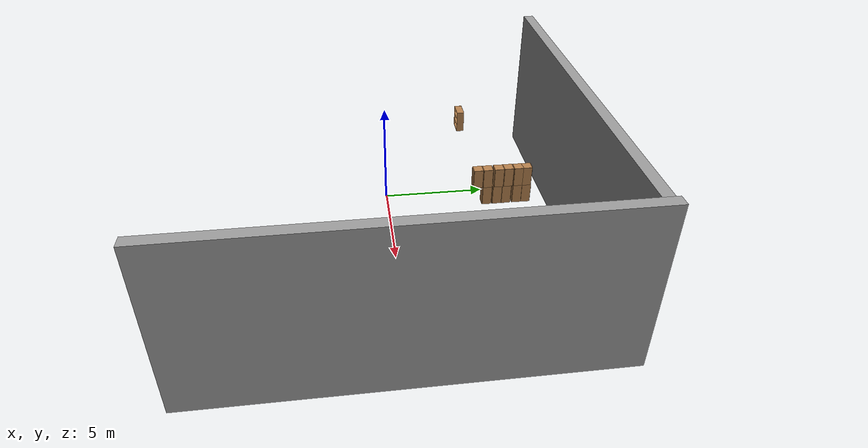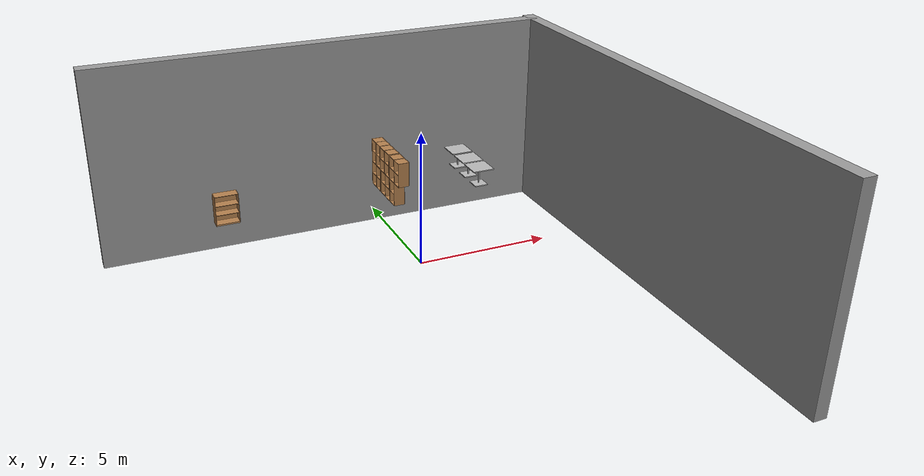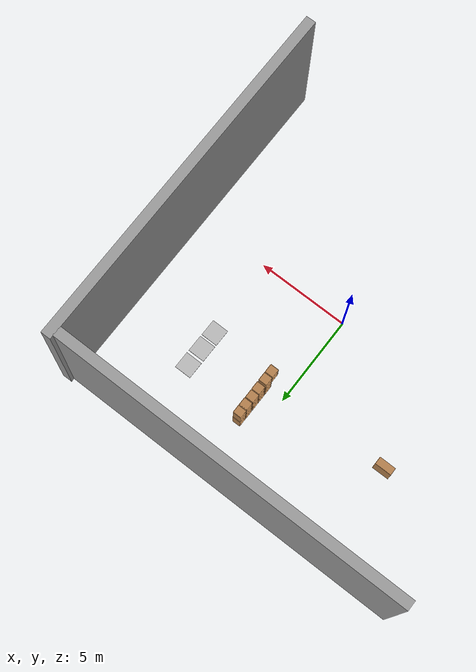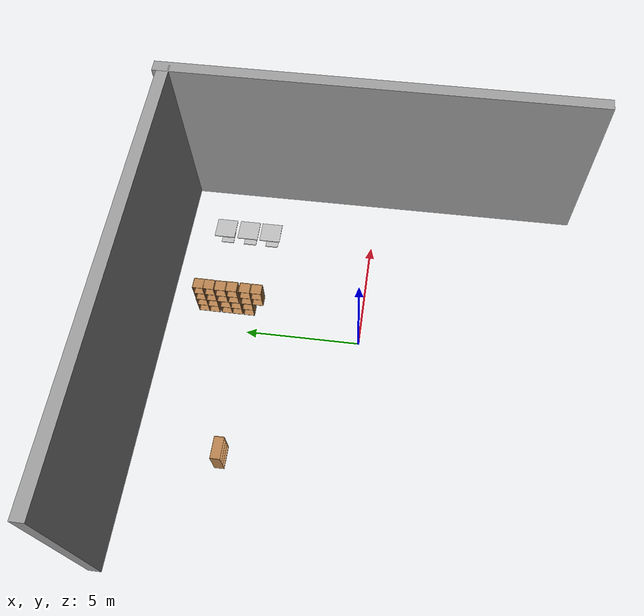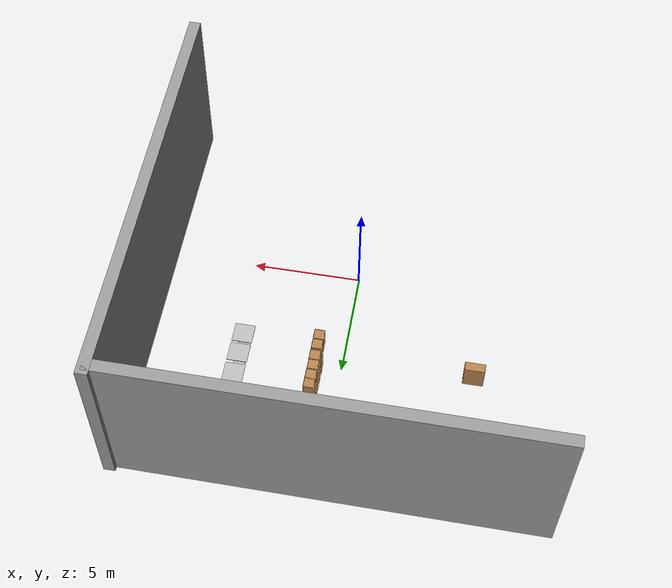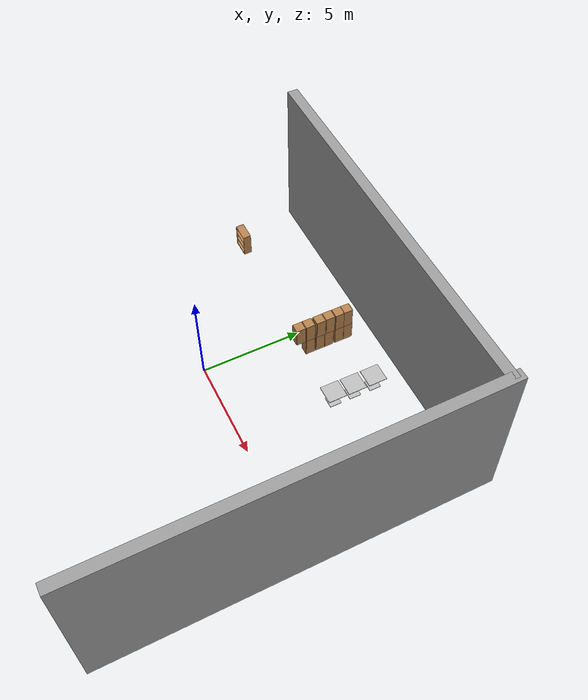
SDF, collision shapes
<sdf version="1.6">
 <model name="indoor_environment_4">
  <model name="bookshelf_clone_12_clone_2">
   <static>1</static>
   <link name="link">
    <inertial><mass>1</mass></inertial>
    <collision name="back">
     <pose>0 0.005 0.6 0 -0 0</pose>
     <geometry><box><size>0.9 0.01 1.2</size></box></geometry>
    </collision>
    <visual name="visual1">
     <pose>0 0.005 0.6 0 -0 0</pose>
     <geometry><box><size>0.9 0.01 1.2</size></box></geometry>
     <material>
      <script><uri>file://media/materials/scripts/gazebo.material</uri><name>Gazebo/Wood</name></script>
     </material>
    </visual>
    <collision name="left_side">
     <pose>0.45 -0.195 0.6 0 -0 0</pose>
     <geometry><box><size>0.02 0.4 1.2</size></box></geometry>
    </collision>
    <visual name="visual2">
     <pose>0.45 -0.195 0.6 0 -0 0</pose>
     <geometry><box><size>0.02 0.4 1.2</size></box></geometry>
     <material>
      <script><uri>file://media/materials/scripts/gazebo.material</uri><name>Gazebo/Wood</name></script>
     </material>
    </visual>
    <collision name="right_side">
     <pose>-0.45 -0.195 0.6 0 -0 0</pose>
     <geometry><box><size>0.02 0.4 1.2</size></box></geometry>
    </collision>
    <visual name="visual3">
     <pose>-0.45 -0.195 0.6 0 -0 0</pose>
     <geometry><box><size>0.02 0.4 1.2</size></box></geometry>
     <material>
      <script><uri>file://media/materials/scripts/gazebo.material</uri><name>Gazebo/Wood</name></script>
     </material>
    </visual>
    <collision name="bottom">
     <pose>0 -0.195 0.03 0 -0 0</pose>
     <geometry><box><size>0.88 0.4 0.06</size></box></geometry>
    </collision>
    <visual name="visual4">
     <pose>0 -0.195 0.03 0 -0 0</pose>
     <geometry><box><size>0.88 0.4 0.06</size></box></geometry>
     <material>
      <script><uri>file://media/materials/scripts/gazebo.material</uri><name>Gazebo/Wood</name></script>
     </material>
    </visual>
    <collision name="top">
     <pose>0 -0.195 1.19 0 -0 0</pose>
     <geometry><box><size>0.88 0.4 0.02</size></box></geometry>
    </collision>
    <visual name="visual5">
     <pose>0 -0.195 1.19 0 -0 0</pose>
     <geometry><box><size>0.88 0.4 0.02</size></box></geometry>
     <material>
      <script><uri>file://media/materials/scripts/gazebo.material</uri><name>Gazebo/Wood</name></script>
     </material>
    </visual>
    <collision name="low_shelf">
     <pose>0 -0.195 0.43 0 -0 0</pose>
     <geometry><box><size>0.88 0.4 0.02</size></box></geometry>
    </collision>
    <visual name="visual6">
     <pose>0 -0.195 0.43 0 -0 0</pose>
     <geometry><box><size>0.88 0.4 0.02</size></box></geometry>
     <material>
      <script><uri>file://media/materials/scripts/gazebo.material</uri><name>Gazebo/Wood</name></script>
     </material>
    </visual>
    <collision name="high_shelf">
     <pose>0 -0.195 0.8 0 -0 0</pose>
     <geometry><box><size>0.88 0.4 0.02</size></box></geometry>
    </collision>
    <visual name="visual7">
     <pose>0 -0.195 0.8 0 -0 0</pose>
     <geometry><box><size>0.88 0.4 0.02</size></box></geometry>
     <material>
      <script><uri>file://media/materials/scripts/gazebo.material</uri><name>Gazebo/Wood</name></script>
     </material>
    </visual>
   </link>
   <pose>-5.9097 5.04344 0.552309 0 -0 0</pose>
  </model>
  <model name="cabinet">
   <static>1</static>
   <link name="cabinet_bottom_plate">
    <inertial>
     <pose>0 0 -1 0 -0 0</pose>
     <inertia><ixx>2.05</ixx><ixy>0</ixy><ixz>0</ixz><iyy>2.05</iyy><iyz>0</iyz><izz>2.05</izz></inertia>
     <mass>25</mass>
    </inertial>
    <collision name="cabinet_bottom_plate_geom">
     <pose>0 0 0.01 0 -0 0</pose>
     <geometry><box><size>0.45 0.45 0.02</size></box></geometry>
    </collision>
    <visual name="cabinet_bottom_plate_geom_visual">
     <pose>0 0 0.01 0 -0 0</pose>
     <geometry><box><size>0.45 0.45 0.02</size></box></geometry>
     <material>
      <script><uri>file://media/materials/scripts/gazebo.material</uri><name>Gazebo/Wood</name></script>
     </material>
    </visual>
    <collision name="cabinet_bottom_plate_geom_cabinet_back_plate">
     <pose>0.235 0 0.51 0 -0 0</pose>
     <geometry><box><size>0.02 0.45 1.02</size></box></geometry>
    </collision>
    <visual name="cabinet_bottom_plate_geom_cabinet_back_plate_visual">
     <pose>0.235 0 0.51 0 -0 0</pose>
     <geometry><box><size>0.02 0.45 1.02</size></box></geometry>
     <material>
      <script><uri>file://media/materials/scripts/gazebo.material</uri><name>Gazebo/Wood</name></script>
     </material>
    </visual>
    <collision name="cabinet_bottom_plate_geom_cabinet_left_plate">
     <pose>0 0.235 0.51 0 -0 0</pose>
     <geometry><box><size>0.45 0.02 1.02</size></box></geometry>
    </collision>
    <visual name="cabinet_bottom_plate_geom_cabinet_left_plate_visual">
     <pose>0 0.235 0.51 0 -0 0</pose>
     <geometry><box><size>0.45 0.02 1.02</size></box></geometry>
     <material>
      <script><uri>file://media/materials/scripts/gazebo.material</uri><name>Gazebo/Wood</name></script>
     </material>
    </visual>
    <collision name="cabinet_bottom_plate_geom_cabinet_middle_plate">
     <pose>0 0 0.51 0 -0 0</pose>
     <geometry><box><size>0.45 0.45 0.02</size></box></geometry>
    </collision>
    <visual name="cabinet_bottom_plate_geom_cabinet_middle_plate_visual">
     <pose>0 0 0.51 0 -0 0</pose>
     <geometry><box><size>0.45 0.45 0.02</size></box></geometry>
     <material>
      <script><uri>file://media/materials/scripts/gazebo.material</uri><name>Gazebo/Wood</name></script>
     </material>
    </visual>
    <collision name="cabinet_bottom_plate_geom_cabinet_right_plate">
     <pose>0 -0.235 0.51 0 -0 0</pose>
     <geometry><box><size>0.45 0.02 1.02</size></box></geometry>
    </collision>
    <visual name="cabinet_bottom_plate_geom_cabinet_right_plate_visual">
     <pose>0 -0.235 0.51 0 -0 0</pose>
     <geometry><box><size>0.45 0.02 1.02</size></box></geometry>
     <material>
      <script><uri>file://media/materials/scripts/gazebo.material</uri><name>Gazebo/Wood</name></script>
     </material>
    </visual>
    <collision name="cabinet_bottom_plate_geom_cabinet_top_plate">
     <pose>0 0 1.01 0 -0 0</pose>
     <geometry><box><size>0.45 0.45 0.02</size></box></geometry>
    </collision>
    <visual name="cabinet_bottom_plate_geom_cabinet_top_plate_visual">
     <pose>0 0 1.01 0 -0 0</pose>
     <geometry><box><size>0.45 0.45 0.02</size></box></geometry>
     <material>
      <script><uri>file://media/materials/scripts/gazebo.material</uri><name>Gazebo/Wood</name></script>
     </material>
    </visual>
   </link>
   <pose>1.0903 7.04344 1.01792 0 -0 0</pose>
  </model>
  <model name="cabinet_0">
   <static>1</static>
   <link name="cabinet_bottom_plate">
    <inertial>
     <pose>0 0 -1 0 -0 0</pose>
     <inertia><ixx>2.05</ixx><ixy>0</ixy><ixz>0</ixz><iyy>2.05</iyy><iyz>0</iyz><izz>2.05</izz></inertia>
     <mass>25</mass>
    </inertial>
    <collision name="cabinet_bottom_plate_geom">
     <pose>0 0 0.01 0 -0 0</pose>
     <geometry><box><size>0.45 0.45 0.02</size></box></geometry>
    </collision>
    <visual name="cabinet_bottom_plate_geom_visual">
     <pose>0 0 0.01 0 -0 0</pose>
     <geometry><box><size>0.45 0.45 0.02</size></box></geometry>
     <material>
      <script><uri>file://media/materials/scripts/gazebo.material</uri><name>Gazebo/Wood</name></script>
     </material>
    </visual>
    <collision name="cabinet_bottom_plate_geom_cabinet_back_plate">
     <pose>0.235 0 0.51 0 -0 0</pose>
     <geometry><box><size>0.02 0.45 1.02</size></box></geometry>
    </collision>
    <visual name="cabinet_bottom_plate_geom_cabinet_back_plate_visual">
     <pose>0.235 0 0.51 0 -0 0</pose>
     <geometry><box><size>0.02 0.45 1.02</size></box></geometry>
     <material>
      <script><uri>file://media/materials/scripts/gazebo.material</uri><name>Gazebo/Wood</name></script>
     </material>
    </visual>
    <collision name="cabinet_bottom_plate_geom_cabinet_left_plate">
     <pose>0 0.235 0.51 0 -0 0</pose>
     <geometry><box><size>0.45 0.02 1.02</size></box></geometry>
    </collision>
    <visual name="cabinet_bottom_plate_geom_cabinet_left_plate_visual">
     <pose>0 0.235 0.51 0 -0 0</pose>
     <geometry><box><size>0.45 0.02 1.02</size></box></geometry>
     <material>
      <script><uri>file://media/materials/scripts/gazebo.material</uri><name>Gazebo/Wood</name></script>
     </material>
    </visual>
    <collision name="cabinet_bottom_plate_geom_cabinet_middle_plate">
     <pose>0 0 0.51 0 -0 0</pose>
     <geometry><box><size>0.45 0.45 0.02</size></box></geometry>
    </collision>
    <visual name="cabinet_bottom_plate_geom_cabinet_middle_plate_visual">
     <pose>0 0 0.51 0 -0 0</pose>
     <geometry><box><size>0.45 0.45 0.02</size></box></geometry>
     <material>
      <script><uri>file://media/materials/scripts/gazebo.material</uri><name>Gazebo/Wood</name></script>
     </material>
    </visual>
    <collision name="cabinet_bottom_plate_geom_cabinet_right_plate">
     <pose>0 -0.235 0.51 0 -0 0</pose>
     <geometry><box><size>0.45 0.02 1.02</size></box></geometry>
    </collision>
    <visual name="cabinet_bottom_plate_geom_cabinet_right_plate_visual">
     <pose>0 -0.235 0.51 0 -0 0</pose>
     <geometry><box><size>0.45 0.02 1.02</size></box></geometry>
     <material>
      <script><uri>file://media/materials/scripts/gazebo.material</uri><name>Gazebo/Wood</name></script>
     </material>
    </visual>
    <collision name="cabinet_bottom_plate_geom_cabinet_top_plate">
     <pose>0 0 1.01 0 -0 0</pose>
     <geometry><box><size>0.45 0.45 0.02</size></box></geometry>
    </collision>
    <visual name="cabinet_bottom_plate_geom_cabinet_top_plate_visual">
     <pose>0 0 1.01 0 -0 0</pose>
     <geometry><box><size>0.45 0.45 0.02</size></box></geometry>
     <material>
      <script><uri>file://media/materials/scripts/gazebo.material</uri><name>Gazebo/Wood</name></script>
     </material>
    </visual>
   </link>
   <pose>1.09514 7.06259 0 0 -0 0</pose>
  </model>
  <model name="cabinet_0_clone">
   <static>1</static>
   <link name="cabinet_bottom_plate">
    <inertial>
     <pose>0 0 -1 0 -0 0</pose>
     <inertia><ixx>2.05</ixx><ixy>0</ixy><ixz>0</ixz><iyy>2.05</iyy><iyz>0</iyz><izz>2.05</izz></inertia>
     <mass>25</mass>
    </inertial>
    <collision name="cabinet_bottom_plate_geom">
     <pose>0 0 0.01 0 -0 0</pose>
     <geometry><box><size>0.45 0.45 0.02</size></box></geometry>
    </collision>
    <visual name="cabinet_bottom_plate_geom_visual">
     <pose>0 0 0.01 0 -0 0</pose>
     <geometry><box><size>0.45 0.45 0.02</size></box></geometry>
     <material>
      <script><uri>file://media/materials/scripts/gazebo.material</uri><name>Gazebo/Wood</name></script>
     </material>
    </visual>
    <collision name="cabinet_bottom_plate_geom_cabinet_back_plate">
     <pose>0.235 0 0.51 0 -0 0</pose>
     <geometry><box><size>0.02 0.45 1.02</size></box></geometry>
    </collision>
    <visual name="cabinet_bottom_plate_geom_cabinet_back_plate_visual">
     <pose>0.235 0 0.51 0 -0 0</pose>
     <geometry><box><size>0.02 0.45 1.02</size></box></geometry>
     <material>
      <script><uri>file://media/materials/scripts/gazebo.material</uri><name>Gazebo/Wood</name></script>
     </material>
    </visual>
    <collision name="cabinet_bottom_plate_geom_cabinet_left_plate">
     <pose>0 0.235 0.51 0 -0 0</pose>
     <geometry><box><size>0.45 0.02 1.02</size></box></geometry>
    </collision>
    <visual name="cabinet_bottom_plate_geom_cabinet_left_plate_visual">
     <pose>0 0.235 0.51 0 -0 0</pose>
     <geometry><box><size>0.45 0.02 1.02</size></box></geometry>
     <material>
      <script><uri>file://media/materials/scripts/gazebo.material</uri><name>Gazebo/Wood</name></script>
     </material>
    </visual>
    <collision name="cabinet_bottom_plate_geom_cabinet_middle_plate">
     <pose>0 0 0.51 0 -0 0</pose>
     <geometry><box><size>0.45 0.45 0.02</size></box></geometry>
    </collision>
    <visual name="cabinet_bottom_plate_geom_cabinet_middle_plate_visual">
     <pose>0 0 0.51 0 -0 0</pose>
     <geometry><box><size>0.45 0.45 0.02</size></box></geometry>
     <material>
      <script><uri>file://media/materials/scripts/gazebo.material</uri><name>Gazebo/Wood</name></script>
     </material>
    </visual>
    <collision name="cabinet_bottom_plate_geom_cabinet_right_plate">
     <pose>0 -0.235 0.51 0 -0 0</pose>
     <geometry><box><size>0.45 0.02 1.02</size></box></geometry>
    </collision>
    <visual name="cabinet_bottom_plate_geom_cabinet_right_plate_visual">
     <pose>0 -0.235 0.51 0 -0 0</pose>
     <geometry><box><size>0.45 0.02 1.02</size></box></geometry>
     <material>
      <script><uri>file://media/materials/scripts/gazebo.material</uri><name>Gazebo/Wood</name></script>
     </material>
    </visual>
    <collision name="cabinet_bottom_plate_geom_cabinet_top_plate">
     <pose>0 0 1.01 0 -0 0</pose>
     <geometry><box><size>0.45 0.45 0.02</size></box></geometry>
    </collision>
    <visual name="cabinet_bottom_plate_geom_cabinet_top_plate_visual">
     <pose>0 0 1.01 0 -0 0</pose>
     <geometry><box><size>0.45 0.45 0.02</size></box></geometry>
     <material>
      <script><uri>file://media/materials/scripts/gazebo.material</uri><name>Gazebo/Wood</name></script>
     </material>
    </visual>
   </link>
   <pose>1.0903 6.59989 0 0 -0 0</pose>
  </model>
  <model name="cabinet_0_clone_0">
   <static>1</static>
   <link name="cabinet_bottom_plate">
    <inertial>
     <pose>0 0 -1 0 -0 0</pose>
     <inertia><ixx>2.05</ixx><ixy>0</ixy><ixz>0</ixz><iyy>2.05</iyy><iyz>0</iyz><izz>2.05</izz></inertia>
     <mass>25</mass>
    </inertial>
    <collision name="cabinet_bottom_plate_geom">
     <pose>0 0 0.01 0 -0 0</pose>
     <geometry><box><size>0.45 0.45 0.02</size></box></geometry>
    </collision>
    <visual name="cabinet_bottom_plate_geom_visual">
     <pose>0 0 0.01 0 -0 0</pose>
     <geometry><box><size>0.45 0.45 0.02</size></box></geometry>
     <material>
      <script><uri>file://media/materials/scripts/gazebo.material</uri><name>Gazebo/Wood</name></script>
     </material>
    </visual>
    <collision name="cabinet_bottom_plate_geom_cabinet_back_plate">
     <pose>0.235 0 0.51 0 -0 0</pose>
     <geometry><box><size>0.02 0.45 1.02</size></box></geometry>
    </collision>
    <visual name="cabinet_bottom_plate_geom_cabinet_back_plate_visual">
     <pose>0.235 0 0.51 0 -0 0</pose>
     <geometry><box><size>0.02 0.45 1.02</size></box></geometry>
     <material>
      <script><uri>file://media/materials/scripts/gazebo.material</uri><name>Gazebo/Wood</name></script>
     </material>
    </visual>
    <collision name="cabinet_bottom_plate_geom_cabinet_left_plate">
     <pose>0 0.235 0.51 0 -0 0</pose>
     <geometry><box><size>0.45 0.02 1.02</size></box></geometry>
    </collision>
    <visual name="cabinet_bottom_plate_geom_cabinet_left_plate_visual">
     <pose>0 0.235 0.51 0 -0 0</pose>
     <geometry><box><size>0.45 0.02 1.02</size></box></geometry>
     <material>
      <script><uri>file://media/materials/scripts/gazebo.material</uri><name>Gazebo/Wood</name></script>
     </material>
    </visual>
    <collision name="cabinet_bottom_plate_geom_cabinet_middle_plate">
     <pose>0 0 0.51 0 -0 0</pose>
     <geometry><box><size>0.45 0.45 0.02</size></box></geometry>
    </collision>
    <visual name="cabinet_bottom_plate_geom_cabinet_middle_plate_visual">
     <pose>0 0 0.51 0 -0 0</pose>
     <geometry><box><size>0.45 0.45 0.02</size></box></geometry>
     <material>
      <script><uri>file://media/materials/scripts/gazebo.material</uri><name>Gazebo/Wood</name></script>
     </material>
    </visual>
    <collision name="cabinet_bottom_plate_geom_cabinet_right_plate">
     <pose>0 -0.235 0.51 0 -0 0</pose>
     <geometry><box><size>0.45 0.02 1.02</size></box></geometry>
    </collision>
    <visual name="cabinet_bottom_plate_geom_cabinet_right_plate_visual">
     <pose>0 -0.235 0.51 0 -0 0</pose>
     <geometry><box><size>0.45 0.02 1.02</size></box></geometry>
     <material>
      <script><uri>file://media/materials/scripts/gazebo.material</uri><name>Gazebo/Wood</name></script>
     </material>
    </visual>
    <collision name="cabinet_bottom_plate_geom_cabinet_top_plate">
     <pose>0 0 1.01 0 -0 0</pose>
     <geometry><box><size>0.45 0.45 0.02</size></box></geometry>
    </collision>
    <visual name="cabinet_bottom_plate_geom_cabinet_top_plate_visual">
     <pose>0 0 1.01 0 -0 0</pose>
     <geometry><box><size>0.45 0.45 0.02</size></box></geometry>
     <material>
      <script><uri>file://media/materials/scripts/gazebo.material</uri><name>Gazebo/Wood</name></script>
     </material>
    </visual>
   </link>
   <pose>1.0903 6.04344 0 0 -0 0</pose>
  </model>
  <model name="cabinet_0_clone_1">
   <static>1</static>
   <link name="cabinet_bottom_plate">
    <inertial>
     <pose>0 0 -1 0 -0 0</pose>
     <inertia><ixx>2.05</ixx><ixy>0</ixy><ixz>0</ixz><iyy>2.05</iyy><iyz>0</iyz><izz>2.05</izz></inertia>
     <mass>25</mass>
    </inertial>
    <collision name="cabinet_bottom_plate_geom">
     <pose>0 0 0.01 0 -0 0</pose>
     <geometry><box><size>0.45 0.45 0.02</size></box></geometry>
    </collision>
    <visual name="cabinet_bottom_plate_geom_visual">
     <pose>0 0 0.01 0 -0 0</pose>
     <geometry><box><size>0.45 0.45 0.02</size></box></geometry>
     <material>
      <script><uri>file://media/materials/scripts/gazebo.material</uri><name>Gazebo/Wood</name></script>
     </material>
    </visual>
    <collision name="cabinet_bottom_plate_geom_cabinet_back_plate">
     <pose>0.235 0 0.51 0 -0 0</pose>
     <geometry><box><size>0.02 0.45 1.02</size></box></geometry>
    </collision>
    <visual name="cabinet_bottom_plate_geom_cabinet_back_plate_visual">
     <pose>0.235 0 0.51 0 -0 0</pose>
     <geometry><box><size>0.02 0.45 1.02</size></box></geometry>
     <material>
      <script><uri>file://media/materials/scripts/gazebo.material</uri><name>Gazebo/Wood</name></script>
     </material>
    </visual>
    <collision name="cabinet_bottom_plate_geom_cabinet_left_plate">
     <pose>0 0.235 0.51 0 -0 0</pose>
     <geometry><box><size>0.45 0.02 1.02</size></box></geometry>
    </collision>
    <visual name="cabinet_bottom_plate_geom_cabinet_left_plate_visual">
     <pose>0 0.235 0.51 0 -0 0</pose>
     <geometry><box><size>0.45 0.02 1.02</size></box></geometry>
     <material>
      <script><uri>file://media/materials/scripts/gazebo.material</uri><name>Gazebo/Wood</name></script>
     </material>
    </visual>
    <collision name="cabinet_bottom_plate_geom_cabinet_middle_plate">
     <pose>0 0 0.51 0 -0 0</pose>
     <geometry><box><size>0.45 0.45 0.02</size></box></geometry>
    </collision>
    <visual name="cabinet_bottom_plate_geom_cabinet_middle_plate_visual">
     <pose>0 0 0.51 0 -0 0</pose>
     <geometry><box><size>0.45 0.45 0.02</size></box></geometry>
     <material>
      <script><uri>file://media/materials/scripts/gazebo.material</uri><name>Gazebo/Wood</name></script>
     </material>
    </visual>
    <collision name="cabinet_bottom_plate_geom_cabinet_right_plate">
     <pose>0 -0.235 0.51 0 -0 0</pose>
     <geometry><box><size>0.45 0.02 1.02</size></box></geometry>
    </collision>
    <visual name="cabinet_bottom_plate_geom_cabinet_right_plate_visual">
     <pose>0 -0.235 0.51 0 -0 0</pose>
     <geometry><box><size>0.45 0.02 1.02</size></box></geometry>
     <material>
      <script><uri>file://media/materials/scripts/gazebo.material</uri><name>Gazebo/Wood</name></script>
     </material>
    </visual>
    <collision name="cabinet_bottom_plate_geom_cabinet_top_plate">
     <pose>0 0 1.01 0 -0 0</pose>
     <geometry><box><size>0.45 0.45 0.02</size></box></geometry>
    </collision>
    <visual name="cabinet_bottom_plate_geom_cabinet_top_plate_visual">
     <pose>0 0 1.01 0 -0 0</pose>
     <geometry><box><size>0.45 0.45 0.02</size></box></geometry>
     <material>
      <script><uri>file://media/materials/scripts/gazebo.material</uri><name>Gazebo/Wood</name></script>
     </material>
    </visual>
   </link>
   <pose>1.0903 5.56701 0 0 -0 0</pose>
  </model>
  <model name="cabinet_0_clone_2">
   <static>1</static>
   <link name="cabinet_bottom_plate">
    <inertial>
     <pose>0 0 -1 0 -0 0</pose>
     <inertia><ixx>2.05</ixx><ixy>0</ixy><ixz>0</ixz><iyy>2.05</iyy><iyz>0</iyz><izz>2.05</izz></inertia>
     <mass>25</mass>
    </inertial>
    <collision name="cabinet_bottom_plate_geom">
     <pose>0 0 0.01 0 -0 0</pose>
     <geometry><box><size>0.45 0.45 0.02</size></box></geometry>
    </collision>
    <visual name="cabinet_bottom_plate_geom_visual">
     <pose>0 0 0.01 0 -0 0</pose>
     <geometry><box><size>0.45 0.45 0.02</size></box></geometry>
     <material>
      <script><uri>file://media/materials/scripts/gazebo.material</uri><name>Gazebo/Wood</name></script>
     </material>
    </visual>
    <collision name="cabinet_bottom_plate_geom_cabinet_back_plate">
     <pose>0.235 0 0.51 0 -0 0</pose>
     <geometry><box><size>0.02 0.45 1.02</size></box></geometry>
    </collision>
    <visual name="cabinet_bottom_plate_geom_cabinet_back_plate_visual">
     <pose>0.235 0 0.51 0 -0 0</pose>
     <geometry><box><size>0.02 0.45 1.02</size></box></geometry>
     <material>
      <script><uri>file://media/materials/scripts/gazebo.material</uri><name>Gazebo/Wood</name></script>
     </material>
    </visual>
    <collision name="cabinet_bottom_plate_geom_cabinet_left_plate">
     <pose>0 0.235 0.51 0 -0 0</pose>
     <geometry><box><size>0.45 0.02 1.02</size></box></geometry>
    </collision>
    <visual name="cabinet_bottom_plate_geom_cabinet_left_plate_visual">
     <pose>0 0.235 0.51 0 -0 0</pose>
     <geometry><box><size>0.45 0.02 1.02</size></box></geometry>
     <material>
      <script><uri>file://media/materials/scripts/gazebo.material</uri><name>Gazebo/Wood</name></script>
     </material>
    </visual>
    <collision name="cabinet_bottom_plate_geom_cabinet_middle_plate">
     <pose>0 0 0.51 0 -0 0</pose>
     <geometry><box><size>0.45 0.45 0.02</size></box></geometry>
    </collision>
    <visual name="cabinet_bottom_plate_geom_cabinet_middle_plate_visual">
     <pose>0 0 0.51 0 -0 0</pose>
     <geometry><box><size>0.45 0.45 0.02</size></box></geometry>
     <material>
      <script><uri>file://media/materials/scripts/gazebo.material</uri><name>Gazebo/Wood</name></script>
     </material>
    </visual>
    <collision name="cabinet_bottom_plate_geom_cabinet_right_plate">
     <pose>0 -0.235 0.51 0 -0 0</pose>
     <geometry><box><size>0.45 0.02 1.02</size></box></geometry>
    </collision>
    <visual name="cabinet_bottom_plate_geom_cabinet_right_plate_visual">
     <pose>0 -0.235 0.51 0 -0 0</pose>
     <geometry><box><size>0.45 0.02 1.02</size></box></geometry>
     <material>
      <script><uri>file://media/materials/scripts/gazebo.material</uri><name>Gazebo/Wood</name></script>
     </material>
    </visual>
    <collision name="cabinet_bottom_plate_geom_cabinet_top_plate">
     <pose>0 0 1.01 0 -0 0</pose>
     <geometry><box><size>0.45 0.45 0.02</size></box></geometry>
    </collision>
    <visual name="cabinet_bottom_plate_geom_cabinet_top_plate_visual">
     <pose>0 0 1.01 0 -0 0</pose>
     <geometry><box><size>0.45 0.45 0.02</size></box></geometry>
     <material>
      <script><uri>file://media/materials/scripts/gazebo.material</uri><name>Gazebo/Wood</name></script>
     </material>
    </visual>
   </link>
   <pose>1.0903 5.04344 0 0 -0 0</pose>
  </model>
  <model name="cabinet_clone">
   <static>1</static>
   <link name="cabinet_bottom_plate">
    <inertial>
     <pose>0 0 -1 0 -0 0</pose>
     <inertia><ixx>2.05</ixx><ixy>0</ixy><ixz>0</ixz><iyy>2.05</iyy><iyz>0</iyz><izz>2.05</izz></inertia>
     <mass>25</mass>
    </inertial>
    <collision name="cabinet_bottom_plate_geom">
     <pose>0 0 0.01 0 -0 0</pose>
     <geometry><box><size>0.45 0.45 0.02</size></box></geometry>
    </collision>
    <visual name="cabinet_bottom_plate_geom_visual">
     <pose>0 0 0.01 0 -0 0</pose>
     <geometry><box><size>0.45 0.45 0.02</size></box></geometry>
     <material>
      <script><uri>file://media/materials/scripts/gazebo.material</uri><name>Gazebo/Wood</name></script>
     </material>
    </visual>
    <collision name="cabinet_bottom_plate_geom_cabinet_back_plate">
     <pose>0.235 0 0.51 0 -0 0</pose>
     <geometry><box><size>0.02 0.45 1.02</size></box></geometry>
    </collision>
    <visual name="cabinet_bottom_plate_geom_cabinet_back_plate_visual">
     <pose>0.235 0 0.51 0 -0 0</pose>
     <geometry><box><size>0.02 0.45 1.02</size></box></geometry>
     <material>
      <script><uri>file://media/materials/scripts/gazebo.material</uri><name>Gazebo/Wood</name></script>
     </material>
    </visual>
    <collision name="cabinet_bottom_plate_geom_cabinet_left_plate">
     <pose>0 0.235 0.51 0 -0 0</pose>
     <geometry><box><size>0.45 0.02 1.02</size></box></geometry>
    </collision>
    <visual name="cabinet_bottom_plate_geom_cabinet_left_plate_visual">
     <pose>0 0.235 0.51 0 -0 0</pose>
     <geometry><box><size>0.45 0.02 1.02</size></box></geometry>
     <material>
      <script><uri>file://media/materials/scripts/gazebo.material</uri><name>Gazebo/Wood</name></script>
     </material>
    </visual>
    <collision name="cabinet_bottom_plate_geom_cabinet_middle_plate">
     <pose>0 0 0.51 0 -0 0</pose>
     <geometry><box><size>0.45 0.45 0.02</size></box></geometry>
    </collision>
    <visual name="cabinet_bottom_plate_geom_cabinet_middle_plate_visual">
     <pose>0 0 0.51 0 -0 0</pose>
     <geometry><box><size>0.45 0.45 0.02</size></box></geometry>
     <material>
      <script><uri>file://media/materials/scripts/gazebo.material</uri><name>Gazebo/Wood</name></script>
     </material>
    </visual>
    <collision name="cabinet_bottom_plate_geom_cabinet_right_plate">
     <pose>0 -0.235 0.51 0 -0 0</pose>
     <geometry><box><size>0.45 0.02 1.02</size></box></geometry>
    </collision>
    <visual name="cabinet_bottom_plate_geom_cabinet_right_plate_visual">
     <pose>0 -0.235 0.51 0 -0 0</pose>
     <geometry><box><size>0.45 0.02 1.02</size></box></geometry>
     <material>
      <script><uri>file://media/materials/scripts/gazebo.material</uri><name>Gazebo/Wood</name></script>
     </material>
    </visual>
    <collision name="cabinet_bottom_plate_geom_cabinet_top_plate">
     <pose>0 0 1.01 0 -0 0</pose>
     <geometry><box><size>0.45 0.45 0.02</size></box></geometry>
    </collision>
    <visual name="cabinet_bottom_plate_geom_cabinet_top_plate_visual">
     <pose>0 0 1.01 0 -0 0</pose>
     <geometry><box><size>0.45 0.45 0.02</size></box></geometry>
     <material>
      <script><uri>file://media/materials/scripts/gazebo.material</uri><name>Gazebo/Wood</name></script>
     </material>
    </visual>
   </link>
   <pose>1.0903 6.60471 1.01792 0 -0 0</pose>
  </model>
  <model name="cabinet_clone_0">
   <static>1</static>
   <link name="cabinet_bottom_plate">
    <inertial>
     <pose>0 0 -1 0 -0 0</pose>
     <inertia><ixx>2.05</ixx><ixy>0</ixy><ixz>0</ixz><iyy>2.05</iyy><iyz>0</iyz><izz>2.05</izz></inertia>
     <mass>25</mass>
    </inertial>
    <collision name="cabinet_bottom_plate_geom">
     <pose>0 0 0.01 0 -0 0</pose>
     <geometry><box><size>0.45 0.45 0.02</size></box></geometry>
    </collision>
    <visual name="cabinet_bottom_plate_geom_visual">
     <pose>0 0 0.01 0 -0 0</pose>
     <geometry><box><size>0.45 0.45 0.02</size></box></geometry>
     <material>
      <script><uri>file://media/materials/scripts/gazebo.material</uri><name>Gazebo/Wood</name></script>
     </material>
    </visual>
    <collision name="cabinet_bottom_plate_geom_cabinet_back_plate">
     <pose>0.235 0 0.51 0 -0 0</pose>
     <geometry><box><size>0.02 0.45 1.02</size></box></geometry>
    </collision>
    <visual name="cabinet_bottom_plate_geom_cabinet_back_plate_visual">
     <pose>0.235 0 0.51 0 -0 0</pose>
     <geometry><box><size>0.02 0.45 1.02</size></box></geometry>
     <material>
      <script><uri>file://media/materials/scripts/gazebo.material</uri><name>Gazebo/Wood</name></script>
     </material>
    </visual>
    <collision name="cabinet_bottom_plate_geom_cabinet_left_plate">
     <pose>0 0.235 0.51 0 -0 0</pose>
     <geometry><box><size>0.45 0.02 1.02</size></box></geometry>
    </collision>
    <visual name="cabinet_bottom_plate_geom_cabinet_left_plate_visual">
     <pose>0 0.235 0.51 0 -0 0</pose>
     <geometry><box><size>0.45 0.02 1.02</size></box></geometry>
     <material>
      <script><uri>file://media/materials/scripts/gazebo.material</uri><name>Gazebo/Wood</name></script>
     </material>
    </visual>
    <collision name="cabinet_bottom_plate_geom_cabinet_middle_plate">
     <pose>0 0 0.51 0 -0 0</pose>
     <geometry><box><size>0.45 0.45 0.02</size></box></geometry>
    </collision>
    <visual name="cabinet_bottom_plate_geom_cabinet_middle_plate_visual">
     <pose>0 0 0.51 0 -0 0</pose>
     <geometry><box><size>0.45 0.45 0.02</size></box></geometry>
     <material>
      <script><uri>file://media/materials/scripts/gazebo.material</uri><name>Gazebo/Wood</name></script>
     </material>
    </visual>
    <collision name="cabinet_bottom_plate_geom_cabinet_right_plate">
     <pose>0 -0.235 0.51 0 -0 0</pose>
     <geometry><box><size>0.45 0.02 1.02</size></box></geometry>
    </collision>
    <visual name="cabinet_bottom_plate_geom_cabinet_right_plate_visual">
     <pose>0 -0.235 0.51 0 -0 0</pose>
     <geometry><box><size>0.45 0.02 1.02</size></box></geometry>
     <material>
      <script><uri>file://media/materials/scripts/gazebo.material</uri><name>Gazebo/Wood</name></script>
     </material>
    </visual>
    <collision name="cabinet_bottom_plate_geom_cabinet_top_plate">
     <pose>0 0 1.01 0 -0 0</pose>
     <geometry><box><size>0.45 0.45 0.02</size></box></geometry>
    </collision>
    <visual name="cabinet_bottom_plate_geom_cabinet_top_plate_visual">
     <pose>0 0 1.01 0 -0 0</pose>
     <geometry><box><size>0.45 0.45 0.02</size></box></geometry>
     <material>
      <script><uri>file://media/materials/scripts/gazebo.material</uri><name>Gazebo/Wood</name></script>
     </material>
    </visual>
   </link>
   <pose>1.08225 6.10084 1.01792 0 -0 0</pose>
  </model>
  <model name="cabinet_clone_0_clone">
   <static>1</static>
   <link name="cabinet_bottom_plate">
    <inertial>
     <pose>0 0 -1 0 -0 0</pose>
     <inertia><ixx>2.05</ixx><ixy>0</ixy><ixz>0</ixz><iyy>2.05</iyy><iyz>0</iyz><izz>2.05</izz></inertia>
     <mass>25</mass>
    </inertial>
    <collision name="cabinet_bottom_plate_geom">
     <pose>0 0 0.01 0 -0 0</pose>
     <geometry><box><size>0.45 0.45 0.02</size></box></geometry>
    </collision>
    <visual name="cabinet_bottom_plate_geom_visual">
     <pose>0 0 0.01 0 -0 0</pose>
     <geometry><box><size>0.45 0.45 0.02</size></box></geometry>
     <material>
      <script><uri>file://media/materials/scripts/gazebo.material</uri><name>Gazebo/Wood</name></script>
     </material>
    </visual>
    <collision name="cabinet_bottom_plate_geom_cabinet_back_plate">
     <pose>0.235 0 0.51 0 -0 0</pose>
     <geometry><box><size>0.02 0.45 1.02</size></box></geometry>
    </collision>
    <visual name="cabinet_bottom_plate_geom_cabinet_back_plate_visual">
     <pose>0.235 0 0.51 0 -0 0</pose>
     <geometry><box><size>0.02 0.45 1.02</size></box></geometry>
     <material>
      <script><uri>file://media/materials/scripts/gazebo.material</uri><name>Gazebo/Wood</name></script>
     </material>
    </visual>
    <collision name="cabinet_bottom_plate_geom_cabinet_left_plate">
     <pose>0 0.235 0.51 0 -0 0</pose>
     <geometry><box><size>0.45 0.02 1.02</size></box></geometry>
    </collision>
    <visual name="cabinet_bottom_plate_geom_cabinet_left_plate_visual">
     <pose>0 0.235 0.51 0 -0 0</pose>
     <geometry><box><size>0.45 0.02 1.02</size></box></geometry>
     <material>
      <script><uri>file://media/materials/scripts/gazebo.material</uri><name>Gazebo/Wood</name></script>
     </material>
    </visual>
    <collision name="cabinet_bottom_plate_geom_cabinet_middle_plate">
     <pose>0 0 0.51 0 -0 0</pose>
     <geometry><box><size>0.45 0.45 0.02</size></box></geometry>
    </collision>
    <visual name="cabinet_bottom_plate_geom_cabinet_middle_plate_visual">
     <pose>0 0 0.51 0 -0 0</pose>
     <geometry><box><size>0.45 0.45 0.02</size></box></geometry>
     <material>
      <script><uri>file://media/materials/scripts/gazebo.material</uri><name>Gazebo/Wood</name></script>
     </material>
    </visual>
    <collision name="cabinet_bottom_plate_geom_cabinet_right_plate">
     <pose>0 -0.235 0.51 0 -0 0</pose>
     <geometry><box><size>0.45 0.02 1.02</size></box></geometry>
    </collision>
    <visual name="cabinet_bottom_plate_geom_cabinet_right_plate_visual">
     <pose>0 -0.235 0.51 0 -0 0</pose>
     <geometry><box><size>0.45 0.02 1.02</size></box></geometry>
     <material>
      <script><uri>file://media/materials/scripts/gazebo.material</uri><name>Gazebo/Wood</name></script>
     </material>
    </visual>
    <collision name="cabinet_bottom_plate_geom_cabinet_top_plate">
     <pose>0 0 1.01 0 -0 0</pose>
     <geometry><box><size>0.45 0.45 0.02</size></box></geometry>
    </collision>
    <visual name="cabinet_bottom_plate_geom_cabinet_top_plate_visual">
     <pose>0 0 1.01 0 -0 0</pose>
     <geometry><box><size>0.45 0.45 0.02</size></box></geometry>
     <material>
      <script><uri>file://media/materials/scripts/gazebo.material</uri><name>Gazebo/Wood</name></script>
     </material>
    </visual>
   </link>
   <pose>1.0903 5.60774 1.01792 0 -0 0</pose>
  </model>
  <model name="cabinet_clone_0_clone_0">
   <static>1</static>
   <link name="cabinet_bottom_plate">
    <inertial>
     <pose>0 0 -1 0 -0 0</pose>
     <inertia><ixx>2.05</ixx><ixy>0</ixy><ixz>0</ixz><iyy>2.05</iyy><iyz>0</iyz><izz>2.05</izz></inertia>
     <mass>25</mass>
    </inertial>
    <collision name="cabinet_bottom_plate_geom">
     <pose>0 0 0.01 0 -0 0</pose>
     <geometry><box><size>0.45 0.45 0.02</size></box></geometry>
    </collision>
    <visual name="cabinet_bottom_plate_geom_visual">
     <pose>0 0 0.01 0 -0 0</pose>
     <geometry><box><size>0.45 0.45 0.02</size></box></geometry>
     <material>
      <script><uri>file://media/materials/scripts/gazebo.material</uri><name>Gazebo/Wood</name></script>
     </material>
    </visual>
    <collision name="cabinet_bottom_plate_geom_cabinet_back_plate">
     <pose>0.235 0 0.51 0 -0 0</pose>
     <geometry><box><size>0.02 0.45 1.02</size></box></geometry>
    </collision>
    <visual name="cabinet_bottom_plate_geom_cabinet_back_plate_visual">
     <pose>0.235 0 0.51 0 -0 0</pose>
     <geometry><box><size>0.02 0.45 1.02</size></box></geometry>
     <material>
      <script><uri>file://media/materials/scripts/gazebo.material</uri><name>Gazebo/Wood</name></script>
     </material>
    </visual>
    <collision name="cabinet_bottom_plate_geom_cabinet_left_plate">
     <pose>0 0.235 0.51 0 -0 0</pose>
     <geometry><box><size>0.45 0.02 1.02</size></box></geometry>
    </collision>
    <visual name="cabinet_bottom_plate_geom_cabinet_left_plate_visual">
     <pose>0 0.235 0.51 0 -0 0</pose>
     <geometry><box><size>0.45 0.02 1.02</size></box></geometry>
     <material>
      <script><uri>file://media/materials/scripts/gazebo.material</uri><name>Gazebo/Wood</name></script>
     </material>
    </visual>
    <collision name="cabinet_bottom_plate_geom_cabinet_middle_plate">
     <pose>0 0 0.51 0 -0 0</pose>
     <geometry><box><size>0.45 0.45 0.02</size></box></geometry>
    </collision>
    <visual name="cabinet_bottom_plate_geom_cabinet_middle_plate_visual">
     <pose>0 0 0.51 0 -0 0</pose>
     <geometry><box><size>0.45 0.45 0.02</size></box></geometry>
     <material>
      <script><uri>file://media/materials/scripts/gazebo.material</uri><name>Gazebo/Wood</name></script>
     </material>
    </visual>
    <collision name="cabinet_bottom_plate_geom_cabinet_right_plate">
     <pose>0 -0.235 0.51 0 -0 0</pose>
     <geometry><box><size>0.45 0.02 1.02</size></box></geometry>
    </collision>
    <visual name="cabinet_bottom_plate_geom_cabinet_right_plate_visual">
     <pose>0 -0.235 0.51 0 -0 0</pose>
     <geometry><box><size>0.45 0.02 1.02</size></box></geometry>
     <material>
      <script><uri>file://media/materials/scripts/gazebo.material</uri><name>Gazebo/Wood</name></script>
     </material>
    </visual>
    <collision name="cabinet_bottom_plate_geom_cabinet_top_plate">
     <pose>0 0 1.01 0 -0 0</pose>
     <geometry><box><size>0.45 0.45 0.02</size></box></geometry>
    </collision>
    <visual name="cabinet_bottom_plate_geom_cabinet_top_plate_visual">
     <pose>0 0 1.01 0 -0 0</pose>
     <geometry><box><size>0.45 0.45 0.02</size></box></geometry>
     <material>
      <script><uri>file://media/materials/scripts/gazebo.material</uri><name>Gazebo/Wood</name></script>
     </material>
    </visual>
   </link>
   <pose>1.0903 5.04344 1.01792 0 -0 0</pose>
  </model>
  <model name="cabinet_clone_0_clone_1">
   <static>1</static>
   <link name="cabinet_bottom_plate">
    <inertial>
     <pose>0 0 -1 0 -0 0</pose>
     <inertia><ixx>2.05</ixx><ixy>0</ixy><ixz>0</ixz><iyy>2.05</iyy><iyz>0</iyz><izz>2.05</izz></inertia>
     <mass>25</mass>
    </inertial>
    <collision name="cabinet_bottom_plate_geom">
     <pose>0 0 0.01 0 -0 0</pose>
     <geometry><box><size>0.45 0.45 0.02</size></box></geometry>
    </collision>
    <visual name="cabinet_bottom_plate_geom_visual">
     <pose>0 0 0.01 0 -0 0</pose>
     <geometry><box><size>0.45 0.45 0.02</size></box></geometry>
     <material>
      <script><uri>file://media/materials/scripts/gazebo.material</uri><name>Gazebo/Wood</name></script>
     </material>
    </visual>
    <collision name="cabinet_bottom_plate_geom_cabinet_back_plate">
     <pose>0.235 0 0.51 0 -0 0</pose>
     <geometry><box><size>0.02 0.45 1.02</size></box></geometry>
    </collision>
    <visual name="cabinet_bottom_plate_geom_cabinet_back_plate_visual">
     <pose>0.235 0 0.51 0 -0 0</pose>
     <geometry><box><size>0.02 0.45 1.02</size></box></geometry>
     <material>
      <script><uri>file://media/materials/scripts/gazebo.material</uri><name>Gazebo/Wood</name></script>
     </material>
    </visual>
    <collision name="cabinet_bottom_plate_geom_cabinet_left_plate">
     <pose>0 0.235 0.51 0 -0 0</pose>
     <geometry><box><size>0.45 0.02 1.02</size></box></geometry>
    </collision>
    <visual name="cabinet_bottom_plate_geom_cabinet_left_plate_visual">
     <pose>0 0.235 0.51 0 -0 0</pose>
     <geometry><box><size>0.45 0.02 1.02</size></box></geometry>
     <material>
      <script><uri>file://media/materials/scripts/gazebo.material</uri><name>Gazebo/Wood</name></script>
     </material>
    </visual>
    <collision name="cabinet_bottom_plate_geom_cabinet_middle_plate">
     <pose>0 0 0.51 0 -0 0</pose>
     <geometry><box><size>0.45 0.45 0.02</size></box></geometry>
    </collision>
    <visual name="cabinet_bottom_plate_geom_cabinet_middle_plate_visual">
     <pose>0 0 0.51 0 -0 0</pose>
     <geometry><box><size>0.45 0.45 0.02</size></box></geometry>
     <material>
      <script><uri>file://media/materials/scripts/gazebo.material</uri><name>Gazebo/Wood</name></script>
     </material>
    </visual>
    <collision name="cabinet_bottom_plate_geom_cabinet_right_plate">
     <pose>0 -0.235 0.51 0 -0 0</pose>
     <geometry><box><size>0.45 0.02 1.02</size></box></geometry>
    </collision>
    <visual name="cabinet_bottom_plate_geom_cabinet_right_plate_visual">
     <pose>0 -0.235 0.51 0 -0 0</pose>
     <geometry><box><size>0.45 0.02 1.02</size></box></geometry>
     <material>
      <script><uri>file://media/materials/scripts/gazebo.material</uri><name>Gazebo/Wood</name></script>
     </material>
    </visual>
    <collision name="cabinet_bottom_plate_geom_cabinet_top_plate">
     <pose>0 0 1.01 0 -0 0</pose>
     <geometry><box><size>0.45 0.45 0.02</size></box></geometry>
    </collision>
    <visual name="cabinet_bottom_plate_geom_cabinet_top_plate_visual">
     <pose>0 0 1.01 0 -0 0</pose>
     <geometry><box><size>0.45 0.45 0.02</size></box></geometry>
     <material>
      <script><uri>file://media/materials/scripts/gazebo.material</uri><name>Gazebo/Wood</name></script>
     </material>
    </visual>
   </link>
   <pose>1.0903 4.54467 1.01792 0 -0 0</pose>
  </model>
  <model name="cafe_table_clone_1_clone">
   <static>1</static>
   <link name="link">
    <collision name="surface">
     <pose>0 0 0.755 0 -0 0</pose>
     <geometry><box><size>0.913 0.913 0.04</size></box></geometry>
    </collision>
    <collision name="column">
     <pose>0 0 0.37 0 -0 0</pose>
     <geometry><box><size>0.042 0.042 0.74</size></box></geometry>
    </collision>
    <collision name="base">
     <pose>0 0 0.02 0 -0 0</pose>
     <geometry><box><size>0.56 0.56 0.04</size></box></geometry>
    </collision>
    <visual name="visual">
     <geometry><mesh><uri>model://cafe_table/meshes/cafe_table.dae</uri></mesh></geometry>
    </visual>
   </link>
   <pose>4.56742 6.64016 0.457011 0 -0 0</pose>
  </model>
  <model name="cafe_table_clone_1_clone_0">
   <static>1</static>
   <link name="link">
    <collision name="surface">
     <pose>0 0 0.755 0 -0 0</pose>
     <geometry><box><size>0.913 0.913 0.04</size></box></geometry>
    </collision>
    <collision name="column">
     <pose>0 0 0.37 0 -0 0</pose>
     <geometry><box><size>0.042 0.042 0.74</size></box></geometry>
    </collision>
    <collision name="base">
     <pose>0 0 0.02 0 -0 0</pose>
     <geometry><box><size>0.56 0.56 0.04</size></box></geometry>
    </collision>
    <visual name="visual">
     <geometry><mesh><uri>model://cafe_table/meshes/cafe_table.dae</uri></mesh></geometry>
    </visual>
   </link>
   <pose>4.56173 5.58826 0.457011 0 -0 0</pose>
  </model>
  <model name="cafe_table_clone_1_clone_1">
   <static>1</static>
   <link name="link">
    <collision name="surface">
     <pose>0 0 0.755 0 -0 0</pose>
     <geometry><box><size>0.913 0.913 0.04</size></box></geometry>
    </collision>
    <collision name="column">
     <pose>0 0 0.37 0 -0 0</pose>
     <geometry><box><size>0.042 0.042 0.74</size></box></geometry>
    </collision>
    <collision name="base">
     <pose>0 0 0.02 0 -0 0</pose>
     <geometry><box><size>0.56 0.56 0.04</size></box></geometry>
    </collision>
    <visual name="visual">
     <geometry><mesh><uri>model://cafe_table/meshes/cafe_table.dae</uri></mesh></geometry>
    </visual>
   </link>
   <pose>4.55404 4.57275 0.457011 0 -0 0</pose>
  </model>
  <model name="grey_wall_mw">
   <link name="link">
    <pose>-8.81665 -2.69351 1.4 0 -0 0</pose>
    <inertial>
     <inertia><ixx>nan</ixx><ixy>0</ixy><ixz>0</ixz><iyy>nan</iyy><iyz>0</iyz><izz>nan</izz></inertia>
     <mass>0</mass>
    </inertial>
    <visual name="visual">
     <cast_shadows>0</cast_shadows>
     <geometry><box><size>20.2056 0.556506 8.63552</size></box></geometry>
     <material>
      <script>
       <uri>model://grey_wall/materials/scripts</uri>
       <uri>model://grey_wall/materials/textures</uri>
       <name>vrc/grey_wall</name>
      </script>
      <ambient>1 1 1 1</ambient>
      <diffuse>1 1 1 1</diffuse>
      <specular>0 0 0 1</specular>
      <emissive>0 0 0 1</emissive>
     </material>
    </visual>
    <collision name="collision">
     <geometry><box><size>20.2056 0.556506 8.63552</size></box></geometry>
     <surface>
      <friction>
       <ode><mu>1</mu><mu2>1</mu2><fdir1>0 0 0</fdir1><slip1>0</slip1><slip2>0</slip2></ode>
       <torsional>
        <coefficient>1</coefficient>
        <patch_radius>0</patch_radius>
        <surface_radius>0</surface_radius>
        <use_patch_radius>1</use_patch_radius>
        <ode><slip>0</slip></ode>
       </torsional>
      </friction>
      <bounce><restitution_coefficient>0</restitution_coefficient><threshold>1e+06</threshold></bounce>
      <contact>
       <collide_without_contact>0</collide_without_contact>
       <collide_without_contact_bitmask>1</collide_without_contact_bitmask>
       <collide_bitmask>1</collide_bitmask>
       <ode>
        <soft_cfm>0</soft_cfm>
        <soft_erp>0.2</soft_erp>
        <kp>1e+13</kp>
        <kd>1</kd>
        <max_vel>0.01</max_vel>
        <min_depth>0</min_depth>
       </ode>
       <bullet>
        <split_impulse>1</split_impulse>
        <split_impulse_penetration_threshold>-0.01</split_impulse_penetration_threshold>
        <soft_cfm>0</soft_cfm>
        <soft_erp>0.2</soft_erp>
        <kp>1e+13</kp>
        <kd>1</kd>
       </bullet>
      </contact>
     </surface>
    </collision>
   </link>
   <static>1</static>
   <pose>8.58869 12.5489 0 0 -0 0</pose>
  </model>
  <model name="grey_wall_mw_clone_0_clone_0">
   <link name="link">
    <pose>-8.81665 -2.69351 1.4 0 -0 0</pose>
    <inertial>
     <inertia><ixx>nan</ixx><ixy>0</ixy><ixz>0</ixz><iyy>nan</iyy><iyz>0</iyz><izz>nan</izz></inertia>
     <mass>0</mass>
    </inertial>
    <visual name="visual">
     <cast_shadows>0</cast_shadows>
     <geometry><box><size>20.2056 0.556506 8.63552</size></box></geometry>
     <material>
      <script>
       <uri>model://grey_wall/materials/scripts</uri>
       <uri>model://grey_wall/materials/textures</uri>
       <name>vrc/grey_wall</name>
      </script>
      <ambient>1 1 1 1</ambient>
      <diffuse>1 1 1 1</diffuse>
      <specular>0 0 0 1</specular>
      <emissive>0 0 0 1</emissive>
     </material>
    </visual>
    <collision name="collision">
     <geometry><box><size>20.2056 0.556506 8.63552</size></box></geometry>
     <surface>
      <friction>
       <ode><mu>1</mu><mu2>1</mu2><fdir1>0 0 0</fdir1><slip1>0</slip1><slip2>0</slip2></ode>
       <torsional>
        <coefficient>1</coefficient>
        <patch_radius>0</patch_radius>
        <surface_radius>0</surface_radius>
        <use_patch_radius>1</use_patch_radius>
        <ode><slip>0</slip></ode>
       </torsional>
      </friction>
      <bounce><restitution_coefficient>0</restitution_coefficient><threshold>1e+06</threshold></bounce>
      <contact>
       <collide_without_contact>0</collide_without_contact>
       <collide_without_contact_bitmask>1</collide_without_contact_bitmask>
       <collide_bitmask>1</collide_bitmask>
       <ode>
        <soft_cfm>0</soft_cfm>
        <soft_erp>0.2</soft_erp>
        <kp>1e+13</kp>
        <kd>1</kd>
        <max_vel>0.01</max_vel>
        <min_depth>0</min_depth>
       </ode>
       <bullet>
        <split_impulse>1</split_impulse>
        <split_impulse_penetration_threshold>-0.01</split_impulse_penetration_threshold>
        <soft_cfm>0</soft_cfm>
        <soft_erp>0.2</soft_erp>
        <kp>1e+13</kp>
        <kd>1</kd>
       </bullet>
      </contact>
     </surface>
    </collision>
   </link>
   <static>1</static>
   <pose>7.0903 9.04344 0 0 -0 1.57436</pose>
  </model>
  <static>1</static>
 </model>
</sdf>
